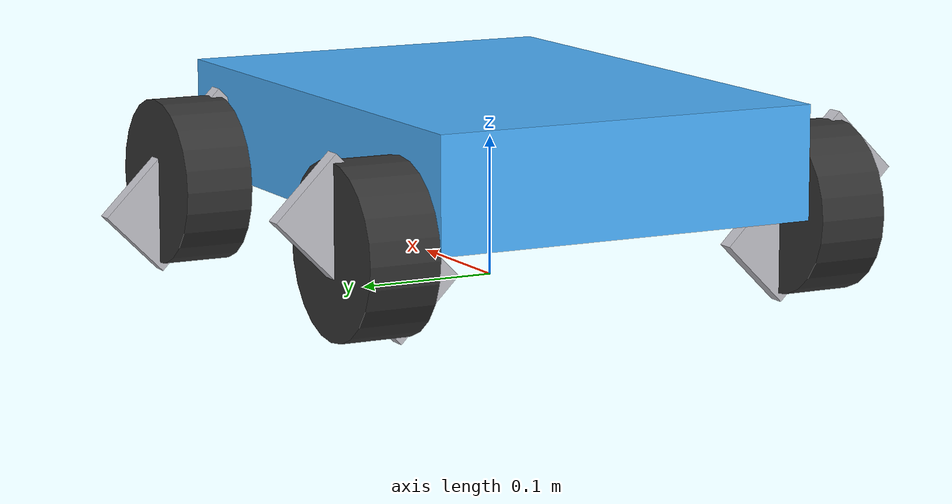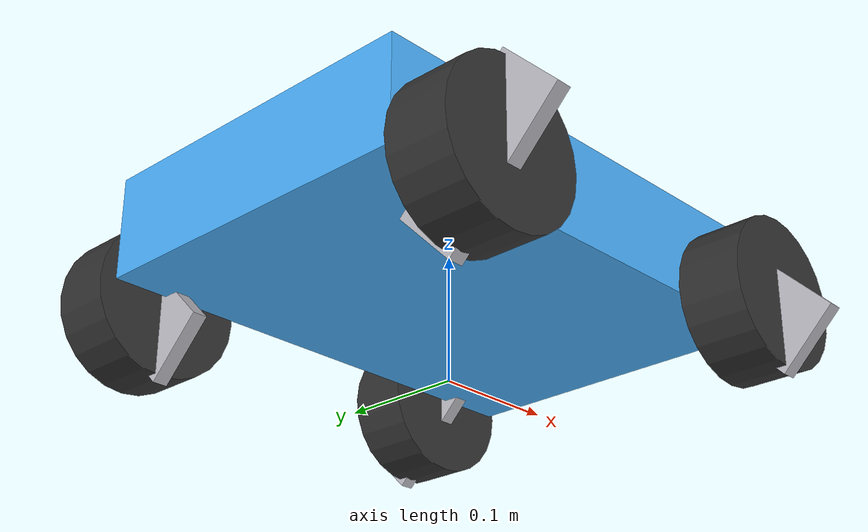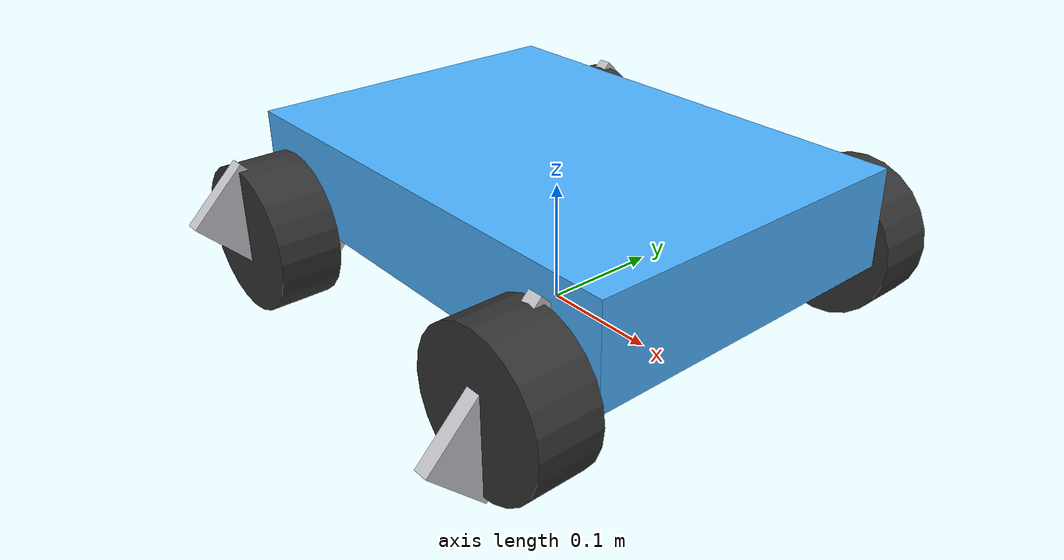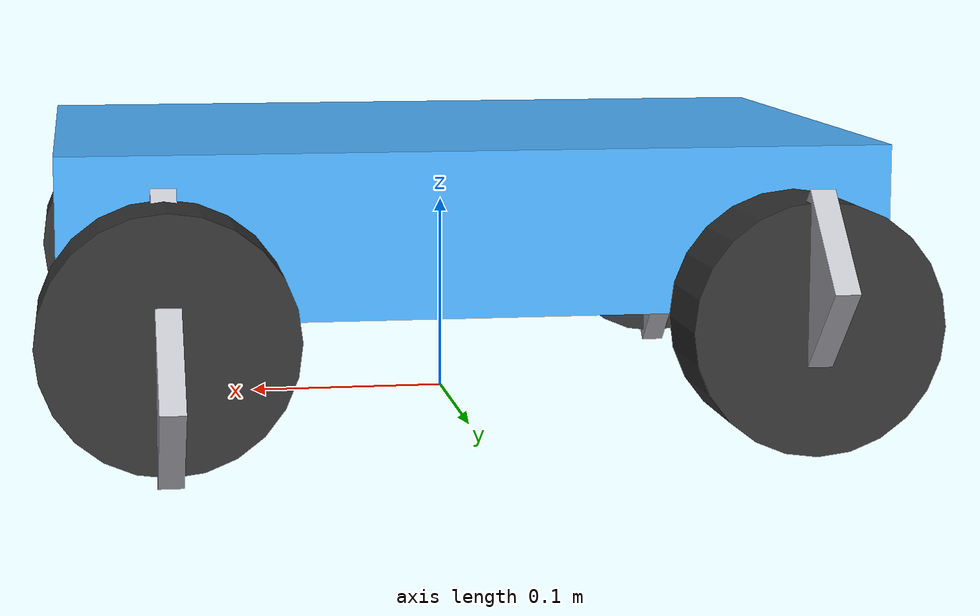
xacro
<?xml version="1.0"?>
<!-- An omnidirectional robot with 4 mecanum wheels. The tilted bars show the 45-degree rollers. -->
<robot name="mecanum" xmlns:xacro="http://www.ros.org/wiki/xacro">
  <xacro:include filename="../../common/urdf/macros.xacro"/>
  <xacro:property name="wr" value="0.06"/>
  <link name="base_footprint"/>
  <joint name="base_joint" type="fixed"><parent link="base_footprint"/><child link="base_link"/><origin xyz="0 0 ${wr}"/></joint>
  <link name="base_link">
    <visual><origin xyz="0 0 0.04"/><geometry><box size="0.40 0.28 0.08"/></geometry><material name="sky_blue"/></visual>
    <collision><origin xyz="0 0 0.04"/><geometry><box size="0.40 0.28 0.08"/></geometry></collision>
    <xacro:box_inertia m="4.0" x="0.40" y="0.28" z="0.08" xyz="0 0 0.04"/>
  </link>
  <xacro:macro name="mwheel" params="name x y roller">
    <joint name="${name}_wheel_joint" type="continuous">
      <parent link="base_link"/><child link="${name}_wheel"/><origin xyz="${x} ${y} 0"/><axis xyz="0 1 0"/>
    </joint>
    <link name="${name}_wheel">
      <visual><origin rpy="${pi/2} 0 0"/><geometry><cylinder radius="${wr}" length="0.05"/></geometry><material name="dark_grey"/></visual>
      <visual><origin rpy="${roller} 0 0"/><geometry><box size="0.012 0.06 ${2*wr+0.005}"/></geometry><material name="light_grey"/></visual>
      <collision><origin rpy="${pi/2} 0 0"/><geometry><cylinder radius="${wr}" length="0.05"/></geometry></collision>
      <xacro:cylinder_inertia m="0.3" r="${wr}" h="0.05" rpy="${pi/2} 0 0"/>
    </link>
  </xacro:macro>
  <xacro:mwheel name="front_left" x="0.15" y="0.17" roller="${pi/4}"/>
  <xacro:mwheel name="front_right" x="0.15" y="-0.17" roller="${-pi/4}"/>
  <xacro:mwheel name="rear_left" x="-0.15" y="0.17" roller="${-pi/4}"/>
  <xacro:mwheel name="rear_right" x="-0.15" y="-0.17" roller="${pi/4}"/>
</robot>

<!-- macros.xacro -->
<!-- Shared materials and inertia macros (solid box, cylinder along Z, sphere) -->
<robot xmlns:xacro="http://www.ros.org/wiki/xacro">
  <material name="orange"><color rgba="1.0 0.55 0.0 1.0"/></material>
  <material name="dark_grey"><color rgba="0.2 0.2 0.2 1.0"/></material>
  <material name="light_grey"><color rgba="0.75 0.75 0.78 1.0"/></material>
  <material name="sky_blue"><color rgba="0.3 0.7 1.0 1.0"/></material>
  <material name="green"><color rgba="0.2 0.75 0.35 1.0"/></material>
  <material name="red"><color rgba="0.9 0.2 0.2 1.0"/></material>
  <material name="white"><color rgba="0.95 0.95 0.95 1.0"/></material>
  <material name="prop_blue"><color rgba="0.3 0.6 1.0 0.6"/></material>

  <xacro:macro name="box_inertia" params="m x y z xyz:='0 0 0' rpy:='0 0 0'">
    <inertial>
      <origin xyz="${xyz}" rpy="${rpy}"/>
      <mass value="${m}"/>
      <inertia ixx="${m*(y*y+z*z)/12}" ixy="0" ixz="0" iyy="${m*(x*x+z*z)/12}" iyz="0" izz="${m*(x*x+y*y)/12}"/>
    </inertial>
  </xacro:macro>
  <xacro:macro name="cylinder_inertia" params="m r h xyz:='0 0 0' rpy:='0 0 0'">
    <inertial>
      <origin xyz="${xyz}" rpy="${rpy}"/>
      <mass value="${m}"/>
      <inertia ixx="${m*(3*r*r+h*h)/12}" ixy="0" ixz="0" iyy="${m*(3*r*r+h*h)/12}" iyz="0" izz="${m*r*r/2}"/>
    </inertial>
  </xacro:macro>
  <xacro:macro name="sphere_inertia" params="m r xyz:='0 0 0'">
    <inertial>
      <origin xyz="${xyz}"/>
      <mass value="${m}"/>
      <inertia ixx="${2*m*r*r/5}" ixy="0" ixz="0" iyy="${2*m*r*r/5}" iyz="0" izz="${2*m*r*r/5}"/>
    </inertial>
  </xacro:macro>
</robot>
